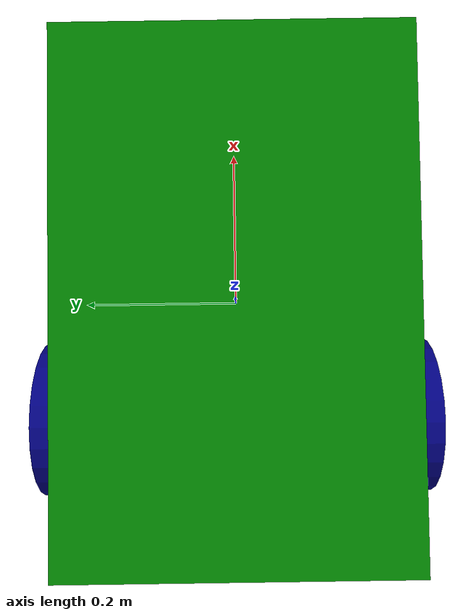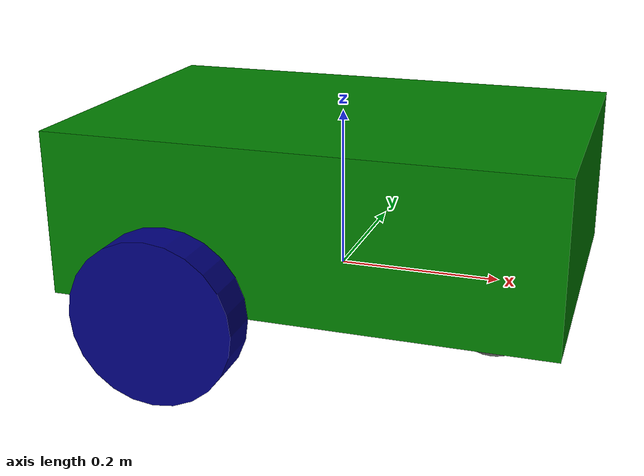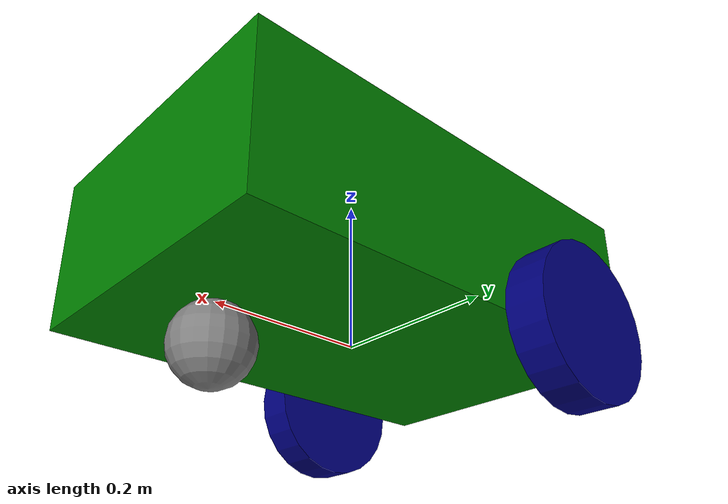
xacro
<?xml version="1.0"?>

<robot name="my_robot" xmlns:xacro="http://www.ros.org/wiki/xacro">

    <xacro:property name="base_length" value="0.6"/>
    <xacro:property name="base_width" value="0.4"/>
    <xacro:property name="base_height" value="0.2"/>
    <xacro:property name="base_mass" value="5.0"/>

    <xacro:property name="wheel_radius" value="0.1"/>
    <xacro:property name="wheel_length" value="0.05"/>
    <xacro:property name="wheel_mass" value="1.0"/>

    <xacro:property name="caster_radius" value="0.05"/>
    <xacro:property name="caster_mass" value="0.5"/>

    <xacro:include filename="common_property.xacro"/>

    <!-- Inertia macros -->
    <xacro:macro name="box_inertia" params="m l w h xyz">
        <inertial>
            <mass value="${m}"/>
            <origin xyz="${xyz}" rpy="0 0 0"/>
            <inertia ixx="${m/12.0 * (w*w + h*h)}" ixy="0" ixz="0"
                     iyy="${m/12.0 * (l*l + h*h)}" iyz="0"
                     izz="${m/12.0 * (l*l + w*w)}"/>
        </inertial>
    </xacro:macro>

    <xacro:macro name="cylinder_inertia" params="m r length">
        <inertial>
            <mass value="${m}"/>
            <origin xyz="0 0 0" rpy="0 0 0"/>
            <inertia ixx="${m/12.0 * (3*r*r + length*length)}" ixy="0" ixz="0"
                     iyy="${0.5 * m * r*r}" iyz="0"
                     izz="${m/12.0 * (3*r*r + length*length)}"/>
        </inertial>
    </xacro:macro>

    <xacro:macro name="sphere_inertia" params="m r">
        <inertial>
            <mass value="${m}"/>
            <origin xyz="0 0 0" rpy="0 0 0"/>
            <inertia ixx="${0.4 * m * r*r}" ixy="0" ixz="0"
                     iyy="${0.4 * m * r*r}" iyz="0"
                     izz="${0.4 * m * r*r}"/>
        </inertial>
    </xacro:macro>

    <!-- Links -->
    <link name="base_link">
        <visual>
            <geometry>
                <box size="${base_length} ${base_width} ${base_height}"/>
            </geometry>
            <origin xyz="0 0 ${base_height/2.0}" rpy="0 0 0"/>
            <material name="green"/>
        </visual>

        <collision>
            <geometry>
                <box size="${base_length} ${base_width} ${base_height}"/>
            </geometry>
            <origin xyz="0 0 ${base_height/2.0}" rpy="0 0 0"/>
        </collision>

        <xacro:box_inertia m="${base_mass}" l="${base_length}" w="${base_width}" h="${base_height}" xyz="0 0 ${base_height/2.0}"/>
    </link>

    <link name="right_wheel">
        <visual>
            <geometry>
                <cylinder radius="${wheel_radius}" length="${wheel_length}"/>
            </geometry>
            <origin xyz="0 0 0" rpy="${pi / 2.0} 0 0"/>
            <material name="blue"/>
        </visual>

        <collision>
            <geometry>
                <cylinder radius="${wheel_radius}" length="${wheel_length}"/>
            </geometry>
            <origin xyz="0 0 0" rpy="${pi / 2.0} 0 0"/>
        </collision>

        <xacro:cylinder_inertia m="${wheel_mass}" r="${wheel_radius}" length="${wheel_length}"/>
    </link>

    <link name="left_wheel">
        <visual>
            <geometry>
                <cylinder radius="${wheel_radius}" length="${wheel_length}"/>
            </geometry>
            <origin xyz="0 0 0" rpy="${pi / 2.0} 0 0"/>
            <material name="blue"/>
        </visual>

        <collision>
            <geometry>
                <cylinder radius="${wheel_radius}" length="${wheel_length}"/>
            </geometry>
            <origin xyz="0 0 0" rpy="${pi / 2.0} 0 0"/>
        </collision>

        <xacro:cylinder_inertia m="${wheel_mass}" r="${wheel_radius}" length="${wheel_length}"/>
    </link>

    <link name="caster_wheel">
        <visual>
            <geometry>
                <sphere radius="${caster_radius}"/>
            </geometry>
            <origin xyz="0 0 0" rpy="0 0 0"/>
            <material name="grey"/>
        </visual>

        <collision>
            <geometry>
                <sphere radius="${caster_radius}"/>
            </geometry>
            <origin xyz="0 0 0" rpy="0 0 0"/>
        </collision>

        <xacro:sphere_inertia m="${caster_mass}" r="${caster_radius}"/>
    </link>

    <!-- Joints -->
    <joint name="base_right_wheel_joint" type="continuous">
        <parent link="base_link"/>
        <child link="right_wheel"/>
        <origin xyz="${-base_length / 4.0} ${-(base_width/2.0 + wheel_length/2.0)} 0" rpy="0 0 0"/>
        <axis xyz="0 1 0"/>
    </joint>

    <joint name="base_left_wheel_joint" type="continuous">
        <parent link="base_link"/>
        <child link="left_wheel"/>
        <origin xyz="${-base_length / 4.0} ${base_width/2.0 + wheel_length/2.0} 0" rpy="0 0 0"/>
        <axis xyz="0 1 0"/>
    </joint>

    <joint name="base_caster_wheel_joint" type="fixed">
        <parent link="base_link"/>
        <child link="caster_wheel"/>
        <origin xyz="${base_length / 3.0} 0 ${-(wheel_radius - caster_radius)}" rpy="0 0 0"/>
    </joint>

</robot>

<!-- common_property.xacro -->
<robot xmlns:xacro="http://www.ros.org/wiki/xacro">

    <material name="green">
        <color rgba="0 0.5 0 1"/>
    </material>

    <material name="grey">
        <color rgba="0.5 0.5 0.5 1"/>
    </material>

    <material name="blue">
        <color rgba="0 0 0.5 1"/>
    </material>

</robot>
